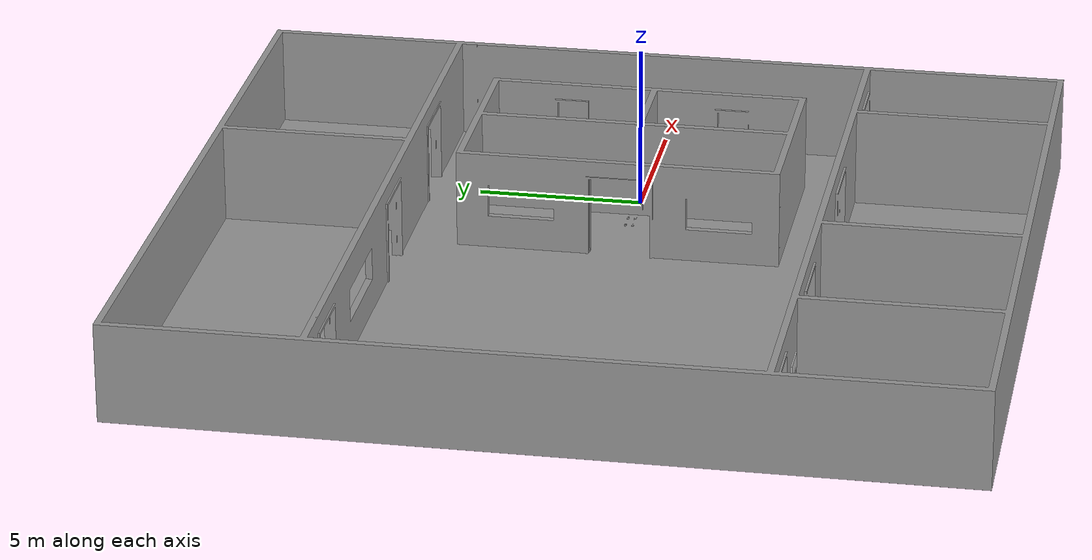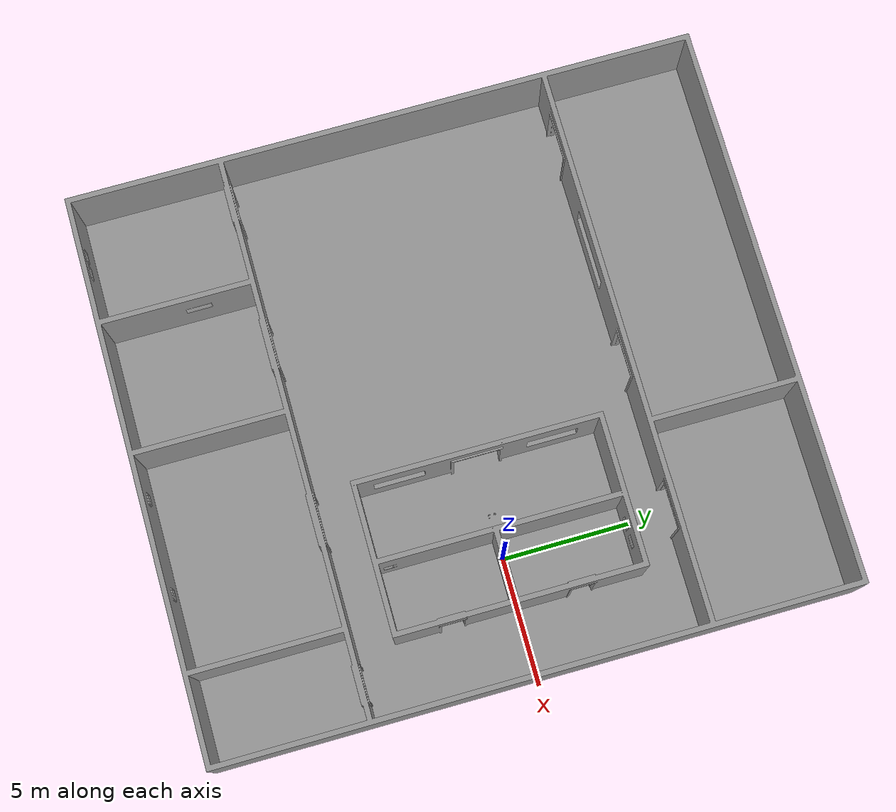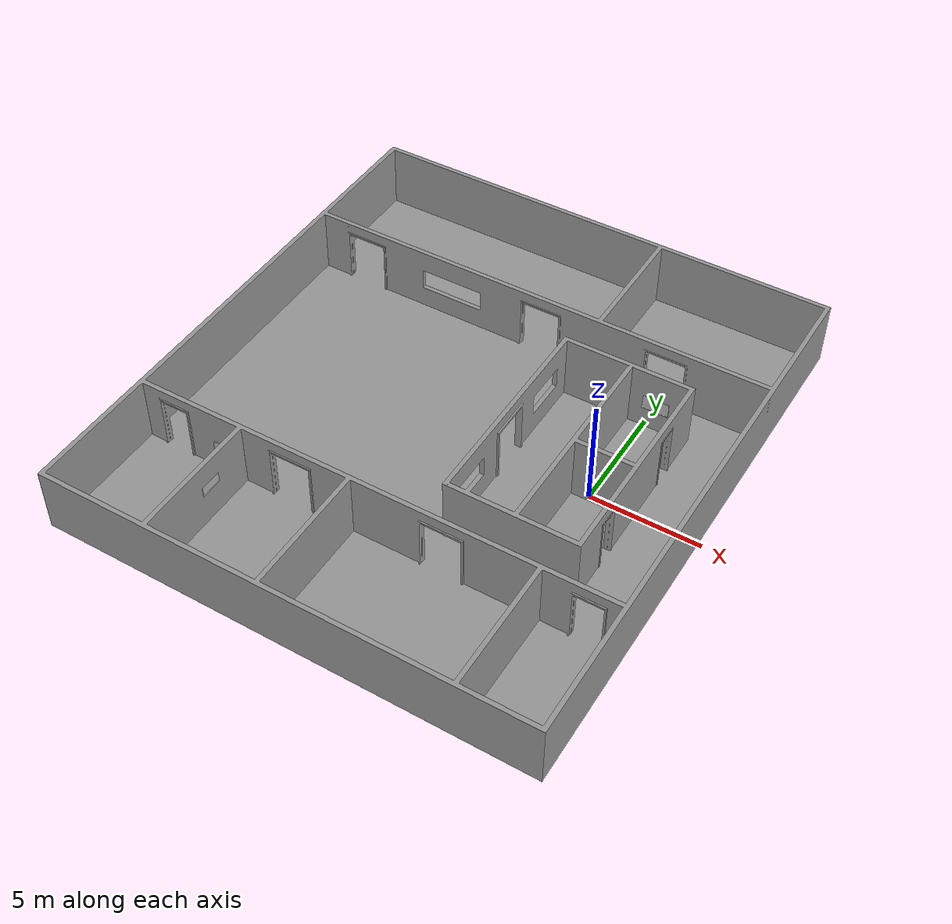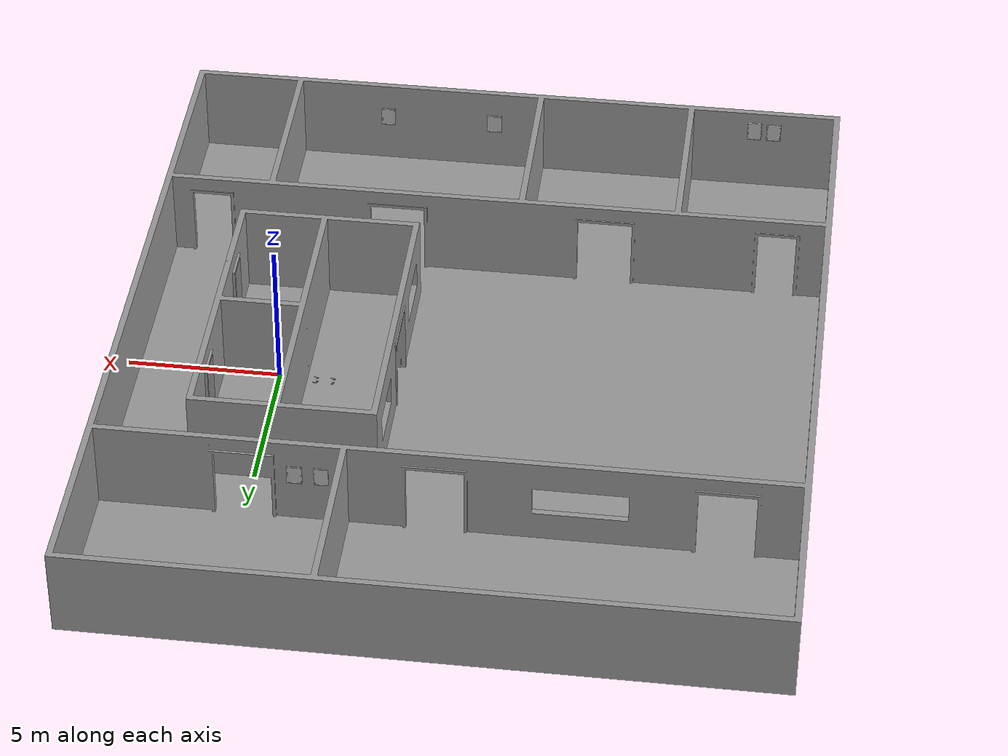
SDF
<sdf version="1.7">
 <world name="default">
  <light name="sun" type="directional">
   <pose>0 0 10 0 -0 0</pose>
   <diffuse>0.8 0.8 0.8 1</diffuse>
   <specular>0.2 0.2 0.2 1</specular>
   <attenuation>
    <range>1000</range>
    <constant>0.9</constant>
    <linear>0.01</linear>
    <quadratic>0.001</quadratic>
   </attenuation>
   <direction>-0.5 0.1 -0.9</direction>
   <spot><inner_angle>0</inner_angle><outer_angle>0</outer_angle><falloff>0</falloff></spot>
  </light>
  <gravity>0 0 -9.8</gravity>
  <magnetic_field>6e-06 2.3e-05 -4.2e-05</magnetic_field>
  <atmosphere type="adiabatic"/>
  <physics type="ode">
   <max_step_size>0.001</max_step_size>
   <real_time_factor>1</real_time_factor>
   <real_time_update_rate>1000</real_time_update_rate>
  </physics>
  <scene>
   <ambient>0.4 0.4 0.4 1</ambient>
   <background>0.7 0.7 0.7 1</background>
   <shadows>1</shadows>
   <grid>false</grid>
   <origin_visual>false</origin_visual>
  </scene>
  <spherical_coordinates>
   <surface_model>EARTH_WGS84</surface_model>
   <latitude_deg>0</latitude_deg>
   <longitude_deg>0</longitude_deg>
   <elevation>0</elevation>
   <heading_deg>0</heading_deg>
  </spherical_coordinates>
  <model name="hospital_floor">
   <static>1</static>
   <link name="body">
    <visual name="visual">
     <geometry><mesh><uri>model://hospital_floor_small/media/hospital_floor.dae</uri></mesh></geometry>
     <material>
      <script>
       <uri>model://hospital_floor_small/media/scripts</uri>
       <uri>model://hospital_floor_small/media/Textures</uri>
       <name>grey_floor</name>
      </script>
     </material>
    </visual>
    <collision name="collision">
     <geometry><mesh><uri>model://hospital_floor_small/media/hospital_floor.dae</uri></mesh></geometry>
    </collision>
   </link>
  </model>
  <model name="terrain_1">
   <static>1</static>
   <link name="body">
    <visual name="visual">
     <geometry><mesh><uri>model://hospital_walls_small/media/hospital_walls.dae</uri></mesh></geometry>
     <material>
      <script>
       <uri>model://hospital_walls_small/media/scripts</uri>
       <uri>model://hospital_walls_small/media/Textures</uri>
       <name>grey_walls</name>
      </script>
     </material>
    </visual>
    <collision name="collision">
     <geometry><mesh><uri>model://hospital_walls_small/media/hospital_walls.dae</uri></mesh></geometry>
    </collision>
   </link>
  </model>
  <model name="aws_robomaker_residential_PortraitA_01">
   <link name="link">
    <inertial><mass>1</mass></inertial>
    <collision name="collision">
     <geometry>
      <mesh>
       <uri>model://aws_models_hospital/aws_robomaker_residential_PortraitA_01/meshes/aws_PortraitA_01_collision.DAE</uri>
       <scale>1 1 1</scale>
      </mesh>
     </geometry>
    </collision>
    <visual name="visual">
     <geometry>
      <mesh>
       <uri>model://aws_models_hospital/aws_robomaker_residential_PortraitA_01/meshes/aws_PortraitA_01_visual.DAE</uri>
      </mesh>
     </geometry>
     <meta><layer>2</layer></meta>
    </visual>
   </link>
   <static>1</static>
   <pose>-14.6023 -12.2865 1.92247 0 0 -0.009352</pose>
  </model>
  <model name="aws_robomaker_residential_PortraitA_01_clone">
   <link name="link">
    <inertial><mass>1</mass></inertial>
    <collision name="collision">
     <geometry>
      <mesh>
       <uri>model://aws_models_hospital/aws_robomaker_residential_PortraitA_01/meshes/aws_PortraitA_01_collision.DAE</uri>
       <scale>1 1 1</scale>
      </mesh>
     </geometry>
    </collision>
    <visual name="visual">
     <geometry>
      <mesh>
       <uri>model://aws_models_hospital/aws_robomaker_residential_PortraitA_01/meshes/aws_PortraitA_01_visual.DAE</uri>
      </mesh>
     </geometry>
     <meta><layer>2</layer></meta>
    </visual>
   </link>
   <static>1</static>
   <pose>-15.2656 -12.2957 1.91263 0 -0 0.00336</pose>
  </model>
  <model name="aws_robomaker_residential_PortraitD_01">
   <link name="link">
    <inertial><mass>1.5</mass></inertial>
    <collision name="collision">
     <geometry>
      <mesh>
       <uri>model://aws_models_hospital/aws_robomaker_residential_PortraitD_01/meshes/aws_PortraitD_01_collision.DAE</uri>
       <scale>1 1 1</scale>
      </mesh>
     </geometry>
    </collision>
    <visual name="visual">
     <geometry>
      <mesh>
       <uri>model://aws_models_hospital/aws_robomaker_residential_PortraitD_01/meshes/aws_PortraitD_01_visual.DAE</uri>
      </mesh>
     </geometry>
     <meta><layer>2</layer></meta>
    </visual>
   </link>
   <static>1</static>
   <pose>-12.2903 -8.64772 1.515 0 -0 1.57486</pose>
  </model>
  <model name="aws_robomaker_residential_PortraitB_01_clone">
   <link name="link">
    <inertial><mass>1</mass></inertial>
    <collision name="collision">
     <geometry>
      <mesh>
       <uri>model://aws_models_hospital/aws_robomaker_residential_PortraitB_01/meshes/aws_PortraitB_01_collision.DAE</uri>
       <scale>1 1 1</scale>
      </mesh>
     </geometry>
    </collision>
    <visual name="visual">
     <geometry>
      <mesh>
       <uri>model://aws_models_hospital/aws_robomaker_residential_PortraitB_01/meshes/aws_PortraitB_01_visual.DAE</uri>
      </mesh>
     </geometry>
     <meta><layer>2</layer></meta>
    </visual>
   </link>
   <static>1</static>
   <pose>-1.62583 6.6849 1.41833 0 0 -3.13193</pose>
  </model>
  <model name="aws_robomaker_residential_PortraitB_01_clone_clone">
   <link name="link">
    <inertial><mass>1</mass></inertial>
    <collision name="collision">
     <geometry>
      <mesh>
       <uri>model://aws_models_hospital/aws_robomaker_residential_PortraitB_01/meshes/aws_PortraitB_01_collision.DAE</uri>
       <scale>1 1 1</scale>
      </mesh>
     </geometry>
    </collision>
    <visual name="visual">
     <geometry>
      <mesh>
       <uri>model://aws_models_hospital/aws_robomaker_residential_PortraitB_01/meshes/aws_PortraitB_01_visual.DAE</uri>
      </mesh>
     </geometry>
     <meta><layer>2</layer></meta>
    </visual>
   </link>
   <static>1</static>
   <pose>-2.47829 6.67831 1.41833 0 0 -3.13091</pose>
  </model>
  <model name="aws_robomaker_residential_PortraitC_01_clone">
   <link name="link">
    <inertial><mass>1</mass></inertial>
    <collision name="collision">
     <geometry>
      <mesh>
       <uri>model://aws_models_hospital/aws_robomaker_residential_PortraitC_01/meshes/aws_PortraitC_01_collision.DAE</uri>
       <scale>1 1 1</scale>
      </mesh>
     </geometry>
    </collision>
    <visual name="visual">
     <geometry>
      <mesh>
       <uri>model://aws_models_hospital/aws_robomaker_residential_PortraitC_01/meshes/aws_PortraitC_01_visual.DAE</uri>
      </mesh>
     </geometry>
     <meta><layer>2</layer></meta>
    </visual>
   </link>
   <static>1</static>
   <pose>0.127232 4.7523 1.00757 0 -0 0</pose>
  </model>
  <model name="aws_robomaker_residential_PortraitC_01_clone_clone_2">
   <link name="link">
    <inertial><mass>1</mass></inertial>
    <collision name="collision">
     <geometry>
      <mesh>
       <uri>model://aws_models_hospital/aws_robomaker_residential_PortraitC_01/meshes/aws_PortraitC_01_collision.DAE</uri>
       <scale>1 1 1</scale>
      </mesh>
     </geometry>
    </collision>
    <visual name="visual">
     <geometry>
      <mesh>
       <uri>model://aws_models_hospital/aws_robomaker_residential_PortraitC_01/meshes/aws_PortraitC_01_visual.DAE</uri>
      </mesh>
     </geometry>
     <meta><layer>2</layer></meta>
    </visual>
   </link>
   <static>1</static>
   <pose>0.838985 4.75815 1.00757 0 -0 0</pose>
  </model>
  <model name="aws_robomaker_residential_PortraitC_01_clone_clone">
   <link name="link">
    <inertial><mass>1</mass></inertial>
    <collision name="collision">
     <geometry>
      <mesh>
       <uri>model://aws_models_hospital/aws_robomaker_residential_PortraitC_01/meshes/aws_PortraitC_01_collision.DAE</uri>
       <scale>1 1 1</scale>
      </mesh>
     </geometry>
    </collision>
    <visual name="visual">
     <geometry>
      <mesh>
       <uri>model://aws_models_hospital/aws_robomaker_residential_PortraitC_01/meshes/aws_PortraitC_01_visual.DAE</uri>
      </mesh>
     </geometry>
     <meta><layer>2</layer></meta>
    </visual>
   </link>
   <static>1</static>
   <pose>-0.710427 -4.22466 0.907092 0 -0 1.58669</pose>
  </model>
  <model name="aws_robomaker_residential_PortraitD_02_clone">
   <link name="link">
    <inertial><mass>1.5</mass></inertial>
    <collision name="collision">
     <geometry>
      <mesh>
       <uri>model://aws_models_hospital/aws_robomaker_residential_PortraitD_02/meshes/aws_PortraitD_01_collision.DAE</uri>
       <scale>1 1 1</scale>
      </mesh>
     </geometry>
    </collision>
    <visual name="visual">
     <geometry>
      <mesh>
       <uri>model://aws_models_hospital/aws_robomaker_residential_PortraitD_02/meshes/aws_PortraitD_01_visual.DAE</uri>
      </mesh>
     </geometry>
     <meta><layer>2</layer></meta>
    </visual>
   </link>
   <static>1</static>
   <pose>-13.3317 -6.51185 1.00843 0 -0 0</pose>
  </model>
  <model name="aws_robomaker_residential_PortraitB_01_clone_clone_0">
   <link name="link">
    <inertial><mass>1</mass></inertial>
    <collision name="collision">
     <geometry>
      <mesh>
       <uri>model://aws_models_hospital/aws_robomaker_residential_PortraitB_01/meshes/aws_PortraitB_01_collision.DAE</uri>
       <scale>1 1 1</scale>
      </mesh>
     </geometry>
    </collision>
    <visual name="visual">
     <geometry>
      <mesh>
       <uri>model://aws_models_hospital/aws_robomaker_residential_PortraitB_01/meshes/aws_PortraitB_01_visual.DAE</uri>
      </mesh>
     </geometry>
     <meta><layer>2</layer></meta>
    </visual>
   </link>
   <static>1</static>
   <pose>-1.83417 -12.2511 1.41833 0 0 -3.13193</pose>
  </model>
  <model name="aws_robomaker_residential_PortraitB_01_clone_clone_1">
   <link name="link">
    <inertial><mass>1</mass></inertial>
    <collision name="collision">
     <geometry>
      <mesh>
       <uri>model://aws_models_hospital/aws_robomaker_residential_PortraitB_01/meshes/aws_PortraitB_01_collision.DAE</uri>
       <scale>1 1 1</scale>
      </mesh>
     </geometry>
    </collision>
    <visual name="visual">
     <geometry>
      <mesh>
       <uri>model://aws_models_hospital/aws_robomaker_residential_PortraitB_01/meshes/aws_PortraitB_01_visual.DAE</uri>
      </mesh>
     </geometry>
     <meta><layer>2</layer></meta>
    </visual>
   </link>
   <static>1</static>
   <pose>-5.56214 -12.2766 1.41833 0 0 -3.13193</pose>
  </model>
 </world>
</sdf>
